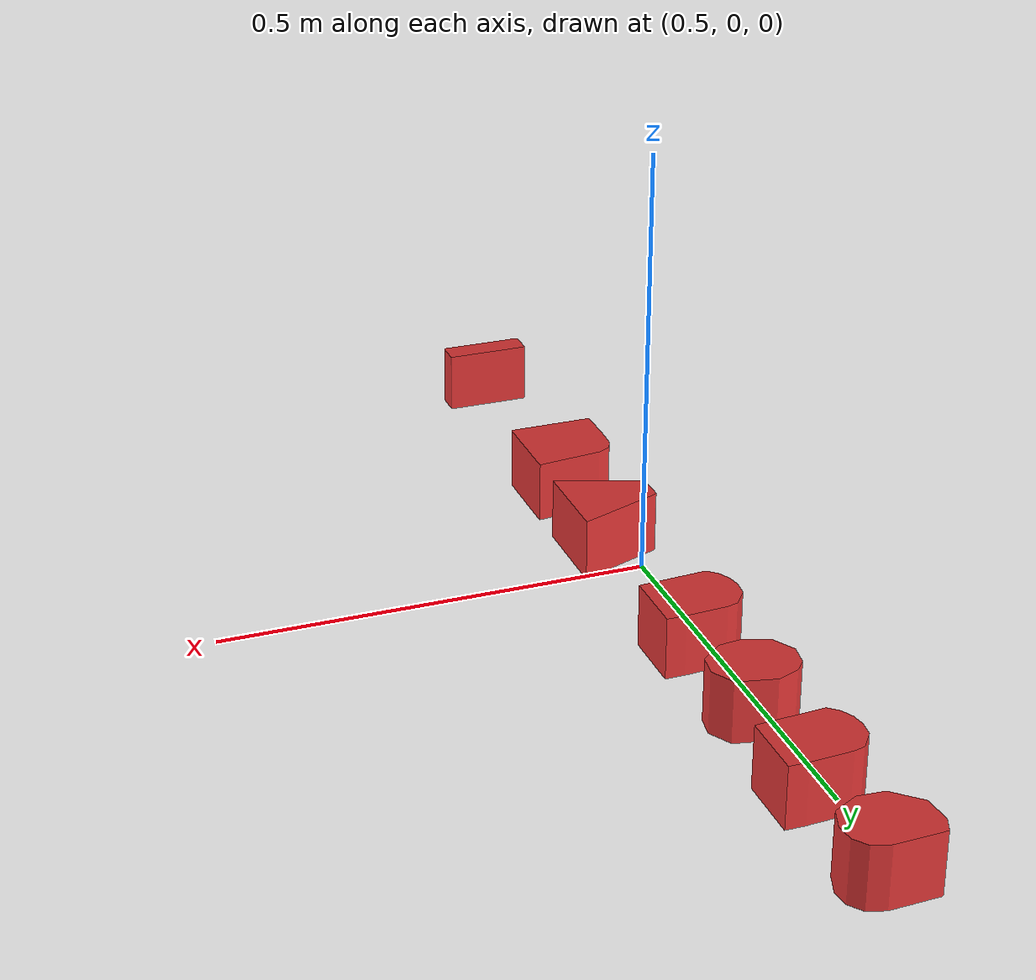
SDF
<?xml version="1.0"?>
<sdf version="1.7">
  <model name="scene_icra_sign">
    <static>true</static>
    <link name="glyph_I"><pose>0.5 -0.55 0.0085 0 0 0</pose>
      <visual name="glyph_I_v"><geometry><mesh><uri>icra_glyphs/glyph_I.obj</uri></mesh></geometry>
        <material><diffuse>0.85 0.2 0.2 1.0</diffuse></material></visual>
      <collision name="glyph_I_c"><geometry><mesh><uri>icra_glyphs/glyph_I.obj</uri>
        <drake:declare_convex/></mesh></geometry></collision>
    </link>
    <link name="glyph_R"><pose>0.5 -0.25 0.0085 0 0 0</pose>
      <visual name="glyph_R_v"><geometry><mesh><uri>icra_glyphs/glyph_R.obj</uri></mesh></geometry>
        <material><diffuse>0.85 0.2 0.2 1.0</diffuse></material></visual>
      <collision name="glyph_R_c"><geometry><mesh><uri>icra_glyphs/glyph_R.obj</uri>
        <drake:declare_convex/></mesh></geometry></collision>
    </link>
    <link name="glyph_A"><pose>0.5 -0.1 0.0085 0 0 0</pose>
      <visual name="glyph_A_v"><geometry><mesh><uri>icra_glyphs/glyph_A.obj</uri></mesh></geometry>
        <material><diffuse>0.85 0.2 0.2 1.0</diffuse></material></visual>
      <collision name="glyph_A_c"><geometry><mesh><uri>icra_glyphs/glyph_A.obj</uri>
        <drake:declare_convex/></mesh></geometry></collision>
    </link>
    <link name="glyph_2"><pose>0.5 0.15 0.0085 0 0 0</pose>
      <visual name="glyph_2_v"><geometry><mesh><uri>icra_glyphs/glyph_2.obj</uri></mesh></geometry>
        <material><diffuse>0.85 0.2 0.2 1.0</diffuse></material></visual>
      <collision name="glyph_2_c"><geometry><mesh><uri>icra_glyphs/glyph_2.obj</uri>
        <drake:declare_convex/></mesh></geometry></collision>
    </link>
    <link name="glyph_0"><pose>0.5 0.3 0.0085 0 0 0</pose>
      <visual name="glyph_0_v"><geometry><mesh><uri>icra_glyphs/glyph_0.obj</uri></mesh></geometry>
        <material><diffuse>0.85 0.2 0.2 1.0</diffuse></material></visual>
      <collision name="glyph_0_c"><geometry><mesh><uri>icra_glyphs/glyph_0.obj</uri>
        <drake:declare_convex/></mesh></geometry></collision>
    </link>
    <link name="glyph_2b"><pose>0.5 0.45 0.0085 0 0 0</pose>
      <visual name="glyph_2b_v"><geometry><mesh><uri>icra_glyphs/glyph_2.obj</uri></mesh></geometry>
        <material><diffuse>0.85 0.2 0.2 1.0</diffuse></material></visual>
      <collision name="glyph_2b_c"><geometry><mesh><uri>icra_glyphs/glyph_2.obj</uri>
        <drake:declare_convex/></mesh></geometry></collision>
    </link>
    <link name="glyph_6"><pose>0.5 0.6 0.0085 0 0 0</pose>
      <visual name="glyph_6_v"><geometry><mesh><uri>icra_glyphs/glyph_6.obj</uri></mesh></geometry>
        <material><diffuse>0.85 0.2 0.2 1.0</diffuse></material></visual>
      <collision name="glyph_6_c"><geometry><mesh><uri>icra_glyphs/glyph_6.obj</uri>
        <drake:declare_convex/></mesh></geometry></collision>
    </link>
  </model>
</sdf>
